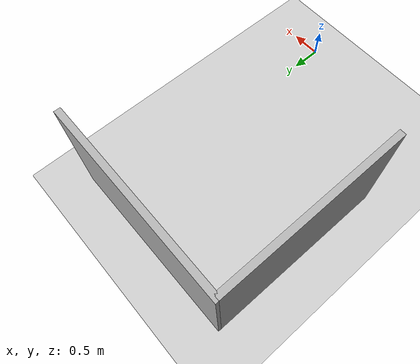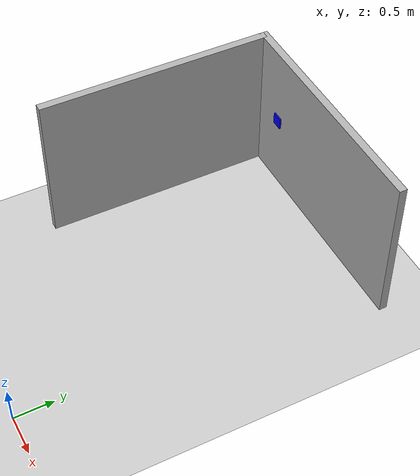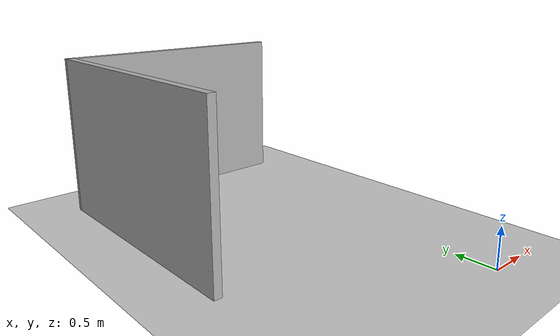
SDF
<?xml version="1.0" ?>
<sdf version="1.6">
  <world name="default">
    <plugin filename="gz-sim-physics-system" name="gz::sim::systems::Physics"/>
    <plugin filename="gz-sim-user-commands-system" name="gz::sim::systems::UserCommands"/>
    <plugin filename="gz-sim-scene-broadcaster-system" name="gz::sim::systems::SceneBroadcaster"/>
    <plugin filename="gz-sim-sensors-system" name="gz::sim::systems::Sensors"/>
    <plugin filename="gz-sim-imu-system" name="gz::sim::systems::Imu"/>
    <plugin filename="ignition-gazebo-forcetorque-system" name="ignition::gazebo::systems::ForceTorque"/>

    <gravity>0 0 -9.8</gravity>
    <physics name="1ms" type="ignored">
      <max_step_size>0.005</max_step_size>
      <real_time_factor>1.0</real_time_factor>
    </physics>

    <scene>
      <shadows>0</shadows>
    </scene>

    <light name="sun" type="directional">
      <cast_shadows>true</cast_shadows>
      <pose>0 0 10 0 0 0</pose>
      <diffuse>0.8 0.8 0.8 1</diffuse>
      <specular>0.2 0.2 0.2 1</specular>
      <attenuation>
        <range>1000</range>
        <constant>0.9</constant>
        <linear>0.01</linear>
        <quadratic>0.001</quadratic>
      </attenuation>
      <direction>-0.5 0.1 -0.9</direction>
    </light>

    <model name="ground_plane">
      <static>true</static>
      <pose>0 0 0 0 0 0</pose>
      <link name="link">
        <collision name="collision">
          <geometry>
            <plane>
              <normal>0 0 1</normal>
              <size>20 20</size>
            </plane>
          </geometry>
        </collision>
        <visual name="visual">
          <geometry>
            <plane>
              <normal>0 0 1</normal>
              <size>20 20</size>
            </plane>
          </geometry>
          <material>
            <ambient>0.8 0.8 0.8 1</ambient>
            <diffuse>0.8 0.8 0.8 1</diffuse>
            <specular>0.8 0.8 0.8 1</specular>
          </material>
        </visual>
      </link>
    </model>

<model name="dead_end_wall">
      <static>true</static>
      <pose>-2.5 3.0 1.0 0 0 1.5708</pose>
      <link name="link">
        <collision name="collision">
          <geometry><box><size>3.0 0.1 2.0</size></box></geometry>
        </collision>
        <visual name="visual">
          <geometry><box><size>3.0 0.1 2.0</size></box></geometry>
          <material><ambient>0.5 0.5 0.5 1</ambient><diffuse>0.7 0.7 0.7 1</diffuse></material>
        </visual>
      </link>
    </model>

    <model name="hallway_wall">
      <static>true</static>
      <pose>-1.0 4.5 1.0 0 0 0</pose>
      <link name="link">
        <collision name="collision">
          <geometry><box><size>3.1 0.1 2.0</size></box></geometry>
        </collision>
        <visual name="visual">
          <geometry><box><size>3.1 0.1 2.0</size></box></geometry>
          <material><ambient>0.5 0.5 0.5 1</ambient><diffuse>0.7 0.7 0.7 1</diffuse></material>
        </visual>
      </link>
    </model>

  <model name="ada_button">
      <static>true</static>
      <pose>-2.0 4.44 1.0 0 0 0</pose>
      <link name="link">
        <visual name="visual">
          <geometry><box><size>0.15 0.02 0.15</size></box></geometry>
          <material><ambient>0 0 1 1</ambient><diffuse>0 0 1 1</diffuse></material>
        </visual>
        <collision name="collision">
          <geometry><box><size>0.15 0.02 0.15</size></box></geometry>
        </collision>
      </link>
    </model>

  </world>
</sdf>
